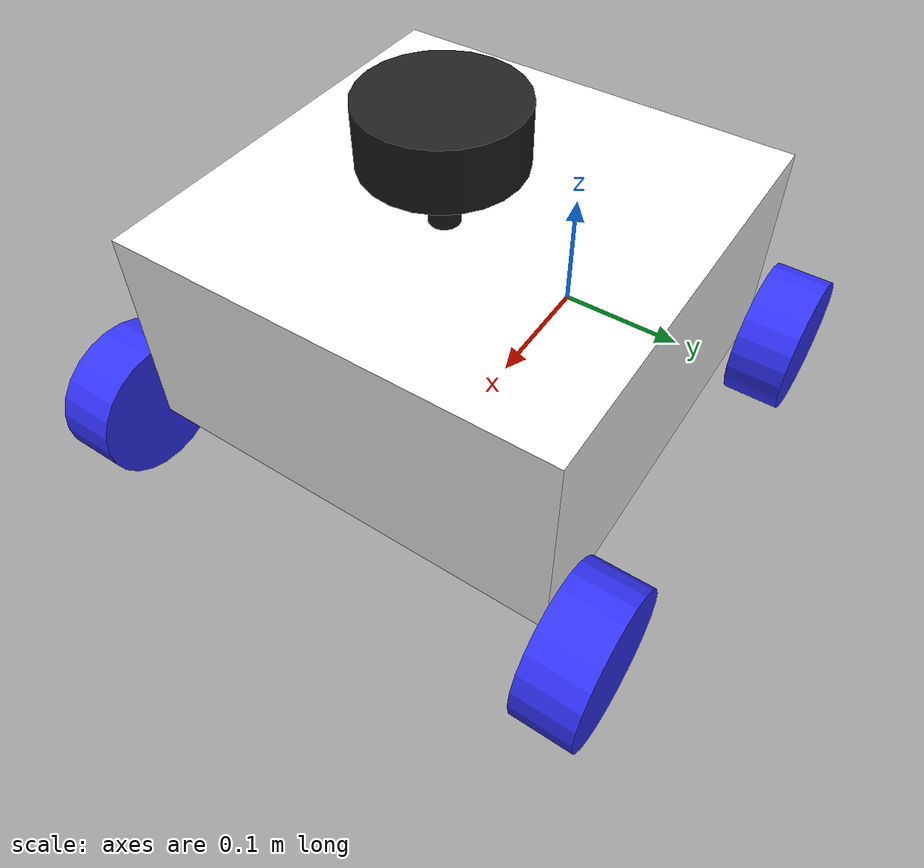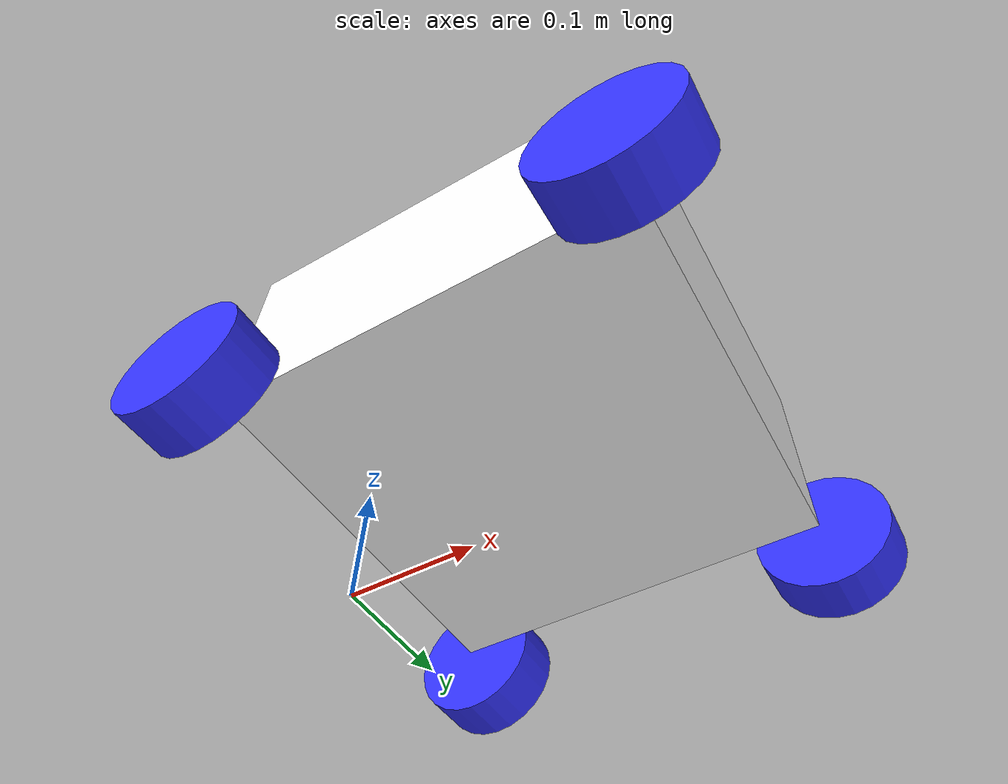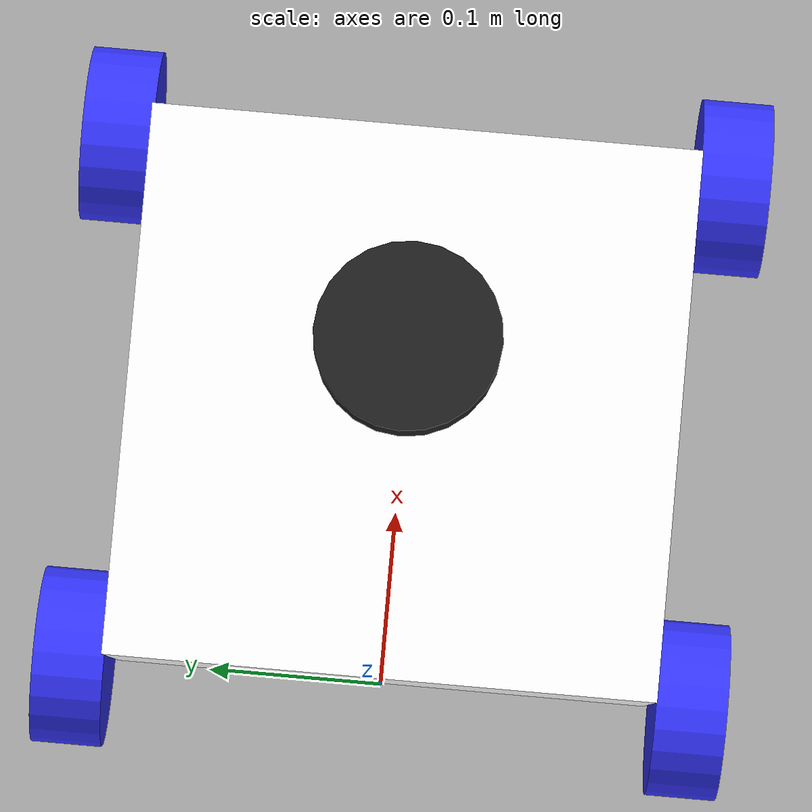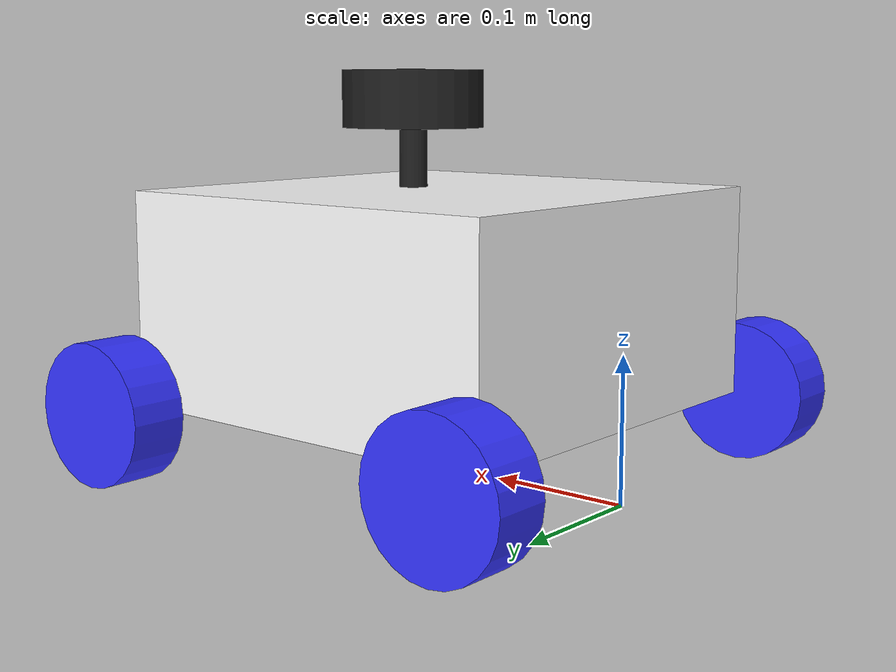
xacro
<?xml version="1.0" encoding="utf-8"?>
<robot xmlns:xacro="http://www.ros.org/wiki/xacro"  name="diffbot_robot">

  <xacro:include filename="diffbot_description.urdf.xacro"/>
  <xacro:include filename="lidar.xacro"/>

  <xacro:include filename="diffbot.ros2_control.xacro"/>
  <xacro:diffbot_ros2_control/>

</robot>

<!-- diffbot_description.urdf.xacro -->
<robot xmlns:xacro="http://www.ros.org/wiki/xacro" >

  <xacro:include filename="$(find diffbot_description)/urdf/inertial_macros.xacro" />

  <material name="white">
    <color rgba="1 1 1 1"/>
  </material>

  <material name="orange">
    <color rgba="1 0.3 0.1 1"/>
  </material>

  <material name="blue">
    <color rgba="0.2 0.2 1 1"/>
  </material>

  <!-- BASE FRAME LINK -->
  <link name="base_footprint">
  </link>

  <!-- base_link -->
  <joint name="base_joint" type="fixed">
    <parent link="base_footprint"/>
    <child link="base_link"/>
    <origin xyz="0.3 0 0.05"/>
  </joint>

  <link name="base_link">
    <visual>
      <origin xyz="-0.15 0 0.075"/>
      <geometry>
        <box size="0.3 0.3 0.15"/>
      </geometry>
      <material name="white"/>
    </visual>
    <collision>
      <origin xyz="-0.15 0 0.075"/>
      <geometry>
        <box size="0.3 0.3 0.15"/>
      </geometry>
    </collision>
    <xacro:inertial_box mass="0.5" x="0.3" y="0.3" z="0.15">
      <origin xyz="-0.15 0 0.075" rpy="0 0 0"/>
    </xacro:inertial_box>
  </link>

  <!-- left_wheel -->
  <joint name="left_wheel_joint" type="continuous">
    <parent link="base_link"/>
    <child link="left_wheel"/>
    <origin xyz="0 0.175 0" rpy="-${pi/2} 0 0"/>
    <axis xyz="0 0 1"/>
  </joint>

  <link name="left_wheel">
    <visual>
      <geometry>
        <cylinder radius="0.05" length="0.04"/>
      </geometry>
      <material name="blue"/>
    </visual>
    <collision>
      <geometry>
        <cylinder radius="0.05" length="0.04"/>
      </geometry>
    </collision>
    <xacro:inertial_cylinder mass="0.1" length="0.04" radius="0.05">
      <origin xyz="0 0 0" rpy="0 0 0"/>
    </xacro:inertial_cylinder>
  </link>

  <!-- left_dummy -->
  <joint name="left_dummy_joint" type="continuous">
    <parent link="base_link"/>
    <child link="left_dummy"/>
    <origin xyz="-0.3 0.175 0" rpy="-${pi/2} 0 0"/>
    <axis xyz="0 0 1"/>
  </joint>

  <link name="left_dummy">
    <visual>
      <geometry>
        <cylinder radius="0.05" length="0.04"/>
      </geometry>
      <material name="blue"/>
    </visual>
    <collision>
      <geometry>
        <cylinder radius="0.05" length="0.04"/>
      </geometry>
    </collision>
    <xacro:inertial_cylinder mass="0.1" length="0.04" radius="0.05">
      <origin xyz="0 0 0" rpy="0 0 0"/>
    </xacro:inertial_cylinder>
  </link>

  <!-- right_wheel -->
  <joint name="right_wheel_joint" type="continuous">
    <parent link="base_link"/>
    <child link="right_wheel"/>
    <origin xyz="0 -0.175 0" rpy="${pi/2} 0 0"/>
    <axis xyz="0 0 -1"/>
  </joint>

  <link name="right_wheel">
    <visual>
      <geometry>
        <cylinder radius="0.05" length="0.04"/>
      </geometry>
      <material name="blue"/>
    </visual>
    <collision>
      <geometry>
        <cylinder radius="0.05" length="0.04"/>
      </geometry>
    </collision>
    <xacro:inertial_cylinder mass="0.1" length="0.04" radius="0.05">
      <origin xyz="0 0 0" rpy="0 0 0"/>
    </xacro:inertial_cylinder>
  </link>

  <!-- right_dummy -->
  <joint name="right_dummy_joint" type="continuous">
    <parent link="base_link"/>
    <child link="right_dummy"/>
    <origin xyz="-0.3 -0.175 0" rpy="${pi/2} 0 0"/>
    <axis xyz="0 0 -1"/>
  </joint>

  <link name="right_dummy">
    <visual>
      <geometry>
        <cylinder radius="0.05" length="0.04"/>
      </geometry>
      <material name="blue"/>
    </visual>
    <collision>
      <geometry>
        <cylinder radius="0.05" length="0.04"/>
      </geometry>
    </collision>
    <xacro:inertial_cylinder mass="0.1" length="0.04" radius="0.05">
      <origin xyz="0 0 0" rpy="0 0 0"/>
    </xacro:inertial_cylinder>
  </link>

</robot>

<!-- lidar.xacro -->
<robot xmlns:xacro="http://www.ros.org/wiki/xacro" >

    <joint name="laser_joint" type="fixed">
        <parent link="base_link"/>
        <child link="laser_frame"/>
        <origin xyz="-0.122 0 0.212" rpy="0 0 0"/>
    </joint>

    <link name="laser_frame">
        <visual>
            <geometry>
                <cylinder radius="0.05" length="0.04"/>
            </geometry>
            <material name="black"/>
        </visual>
        <visual>
            <origin xyz="0 0 -0.05"/>
            <geometry>
                <cylinder radius="0.01" length="0.1"/>
            </geometry>
            <material name="black"/>
        </visual>
        <collision>
            <geometry>
                <cylinder radius="0.05" length="0.04"/>
            </geometry>
        </collision>
        <xacro:inertial_cylinder mass="0.1" length="0.04" radius="0.05">
            <origin xyz="0 0 0" rpy="0 0 0"/>
        </xacro:inertial_cylinder>
    </link>

    <gazebo reference="laser_frame">
        <material>Gazebo/Black</material>

        <sensor name="laser" type="gpu_lidar">
            <pose> 0 0 0 0 0 0 </pose>
            <visualize>true</visualize>
            <update_rate>10</update_rate>
            <lidar>
                <scan>
                    <horizontal>
                        <samples>360</samples>
                        <min_angle>-3.14</min_angle>
                        <max_angle>3.14</max_angle>
                    </horizontal>
                </scan>
                <range>
                    <min>0.3</min>
                    <max>12</max>
                </range>
            </lidar>

            <topic>scan</topic>
            <gz_frame_id>laser_frame</gz_frame_id>
        </sensor>
    </gazebo>

</robot>
